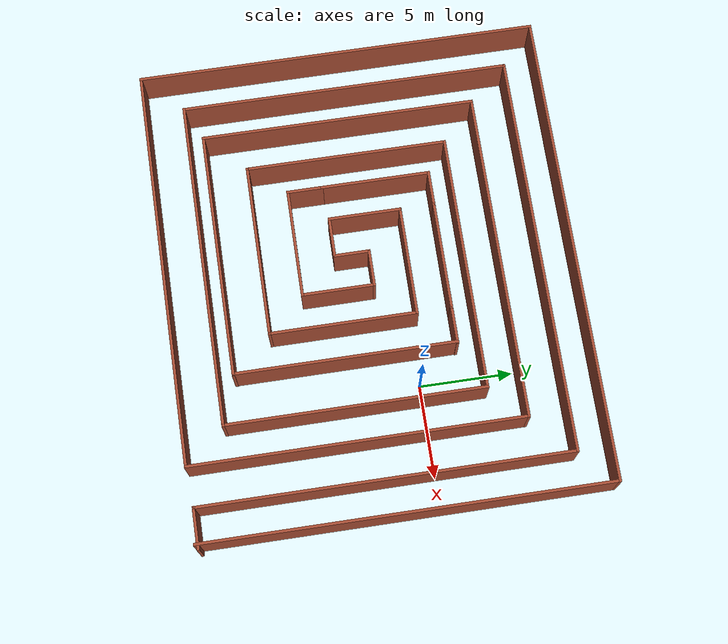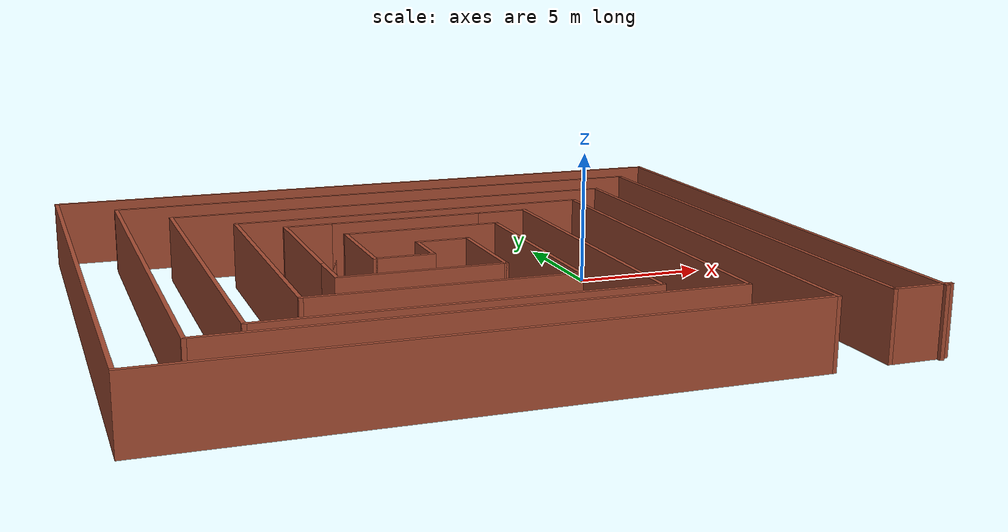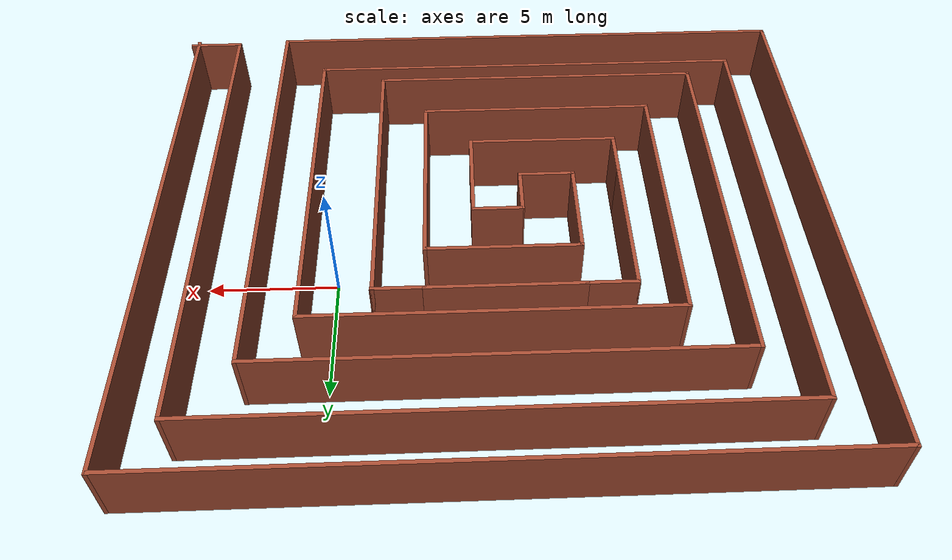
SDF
<?xml version='1.0'?>
<sdf version='1.6'>
  <model name='Laberinto'>
    <pose frame=''>-5.90005 -1.74204 0 0 -0 0</pose>
    <link name='Wall_11'>
      <collision name='Wall_11_Collision'>
        <geometry>
          <box>
            <size>2 0.15 2.5</size>
          </box>
        </geometry>
        <pose frame=''>0 0 1.25 0 -0 0</pose>
      </collision>
      <visual name='Wall_11_Visual'>
        <pose frame=''>0 0 1.25 0 -0 0</pose>
        <geometry>
          <box>
            <size>2 0.15 2.5</size>
          </box>
        </geometry>
        <material>
          <script>
            <uri>file://media/materials/scripts/gazebo.material</uri>
            <name>Gazebo/Bricks</name>
          </script>
          <ambient>1 1 1 1</ambient>
        </material>
      </visual>
      <pose frame=''>-4.32505 3.92486 0 0 -0 3.14159</pose>
    </link>
    <link name='Wall_14'>
      <collision name='Wall_14_Collision'>
        <geometry>
          <box>
            <size>6 0.15 2.5</size>
          </box>
        </geometry>
        <pose frame=''>0 0 1.25 0 -0 0</pose>
      </collision>
      <visual name='Wall_14_Visual'>
        <pose frame=''>0 0 1.25 0 -0 0</pose>
        <geometry>
          <box>
            <size>6 0.15 2.5</size>
          </box>
        </geometry>
        <material>
          <script>
            <uri>file://media/materials/scripts/gazebo.material</uri>
            <name>Gazebo/Bricks</name>
          </script>
          <ambient>1 1 1 1</ambient>
        </material>
      </visual>
      <pose frame=''>-5.25005 0.999863 0 0 0 -1.5708</pose>
    </link>
    <link name='Wall_23'>
      <collision name='Wall_23_Collision'>
        <geometry>
          <box>
            <size>2 0.15 2.5</size>
          </box>
        </geometry>
        <pose frame=''>0 0 1.25 0 -0 0</pose>
      </collision>
      <visual name='Wall_23_Visual'>
        <pose frame=''>0 0 1.25 0 -0 0</pose>
        <geometry>
          <box>
            <size>2 0.15 2.5</size>
          </box>
        </geometry>
        <material>
          <script>
            <uri>file://media/materials/scripts/gazebo.material</uri>
            <name>Gazebo/Bricks</name>
          </script>
          <ambient>1 1 1 1</ambient>
        </material>
      </visual>
      <pose frame=''>-5.25005 -2.85014 0 0 0 -1.5708</pose>
    </link>
    <link name='Wall_24'>
      <collision name='Wall_24_Collision'>
        <geometry>
          <box>
            <size>6 0.15 2.5</size>
          </box>
        </geometry>
        <pose frame=''>0 0 1.25 0 -0 0</pose>
      </collision>
      <visual name='Wall_24_Visual'>
        <pose frame=''>0 0 1.25 0 -0 0</pose>
        <geometry>
          <box>
            <size>6 0.15 2.5</size>
          </box>
        </geometry>
        <material>
          <script>
            <uri>file://media/materials/scripts/gazebo.material</uri>
            <name>Gazebo/Bricks</name>
          </script>
          <ambient>1 1 1 1</ambient>
        </material>
      </visual>
      <pose frame=''>-2.32505 -3.77514 0 0 -0 0</pose>
    </link>
    <link name='Wall_35'>
      <collision name='Wall_35_Collision'>
        <geometry>
          <box>
            <size>4 0.15 2.5</size>
          </box>
        </geometry>
        <pose frame=''>0 0 1.25 0 -0 0</pose>
      </collision>
      <visual name='Wall_35_Visual'>
        <pose frame=''>0 0 1.25 0 -0 0</pose>
        <geometry>
          <box>
            <size>4 0.15 2.5</size>
          </box>
        </geometry>
        <material>
          <script>
            <uri>file://media/materials/scripts/gazebo.material</uri>
            <name>Gazebo/Bricks</name>
          </script>
          <ambient>1 1 1 1</ambient>
        </material>
      </visual>
      <pose frame=''>0.599954 -1.85014 0 0 -0 1.5708</pose>
    </link>
    <link name='Wall_37'>
      <collision name='Wall_37_Collision'>
        <geometry>
          <box>
            <size>2 0.15 2.5</size>
          </box>
        </geometry>
        <pose frame=''>0 0 1.25 0 -0 0</pose>
      </collision>
      <visual name='Wall_37_Visual'>
        <pose frame=''>0 0 1.25 0 -0 0</pose>
        <geometry>
          <box>
            <size>2 0.15 2.5</size>
          </box>
        </geometry>
        <material>
          <script>
            <uri>file://media/materials/scripts/gazebo.material</uri>
            <name>Gazebo/Bricks</name>
          </script>
          <ambient>1 1 1 1</ambient>
        </material>
      </visual>
      <pose frame=''>-0.325046 0.074863 0 0 -0 3.14159</pose>
    </link>
    <link name='Wall_40'>
      <collision name='Wall_40_Collision'>
        <geometry>
          <box>
            <size>4 0.15 2.5</size>
          </box>
        </geometry>
        <pose frame=''>0 0 1.25 0 -0 0</pose>
      </collision>
      <visual name='Wall_40_Visual'>
        <pose frame=''>0 0 1.25 0 -0 0</pose>
        <geometry>
          <box>
            <size>4 0.15 2.5</size>
          </box>
        </geometry>
        <material>
          <script>
            <uri>file://media/materials/scripts/gazebo.material</uri>
            <name>Gazebo/Bricks</name>
          </script>
          <ambient>1 1 1 1</ambient>
        </material>
      </visual>
      <pose frame=''>-3.40005 0.149863 0 0 0 -1.5708</pose>
    </link>
    <link name='Wall_41'>
      <collision name='Wall_41_Collision'>
        <geometry>
          <box>
            <size>2.25 0.15 2.5</size>
          </box>
        </geometry>
        <pose frame=''>0 0 1.25 0 -0 0</pose>
      </collision>
      <visual name='Wall_41_Visual'>
        <pose frame=''>0 0 1.25 0 -0 0</pose>
        <geometry>
          <box>
            <size>2.25 0.15 2.5</size>
          </box>
        </geometry>
        <material>
          <script>
            <uri>file://media/materials/scripts/gazebo.material</uri>
            <name>Gazebo/Bricks</name>
          </script>
          <ambient>1 1 1 1</ambient>
        </material>
      </visual>
      <pose frame=''>-2.35005 -1.77514 0 0 -0 0</pose>
    </link>
    <link name='Wall_42'>
      <collision name='Wall_42_Collision'>
        <geometry>
          <box>
            <size>2 0.15 2.5</size>
          </box>
        </geometry>
        <pose frame=''>0 0 1.25 0 -0 0</pose>
      </collision>
      <visual name='Wall_42_Visual'>
        <pose frame=''>0 0 1.25 0 -0 0</pose>
        <geometry>
          <box>
            <size>2 0.15 2.5</size>
          </box>
        </geometry>
        <material>
          <script>
            <uri>file://media/materials/scripts/gazebo.material</uri>
            <name>Gazebo/Bricks</name>
          </script>
          <ambient>1 1 1 1</ambient>
        </material>
      </visual>
      <pose frame=''>-1.30005 -0.850137 0 0 -0 1.5708</pose>
    </link>
    <link name='Wall_47'>
      <collision name='Wall_47_Collision'>
        <geometry>
          <box>
            <size>2.0529 0.15 2.5</size>
          </box>
        </geometry>
        <pose frame=''>0 0 1.25 0 -0 0</pose>
      </collision>
      <visual name='Wall_47_Visual'>
        <pose frame=''>0 0 1.25 0 -0 0</pose>
        <geometry>
          <box>
            <size>2.0529 0.15 2.5</size>
          </box>
        </geometry>
        <material>
          <script>
            <uri>file://media/materials/scripts/gazebo.material</uri>
            <name>Gazebo/Bricks</name>
          </script>
          <ambient>1 1 1 1</ambient>
        </material>
      </visual>
      <pose frame=''>3.4014 3.92486 0 0 -0 0</pose>
    </link>
    <link name='Wall_51'>
      <collision name='Wall_51_Collision'>
        <geometry>
          <box>
            <size>8 0.15 2.5</size>
          </box>
        </geometry>
        <pose frame=''>0 0 1.25 0 -0 0</pose>
      </collision>
      <visual name='Wall_51_Visual'>
        <pose frame=''>0 0 1.25 0 -0 0</pose>
        <geometry>
          <box>
            <size>8 0.15 2.5</size>
          </box>
        </geometry>
        <material>
          <script>
            <uri>file://media/materials/scripts/gazebo.material</uri>
            <name>Gazebo/Bricks</name>
          </script>
          <ambient>1 1 1 1</ambient>
        </material>
      </visual>
      <pose frame=''>2.44995 -1.85014 0 0 0 -1.5708</pose>
    </link>
    <link name='Wall_53'>
      <collision name='Wall_53_Collision'>
        <geometry>
          <box>
            <size>9.5 0.15 2.5</size>
          </box>
        </geometry>
        <pose frame=''>0 0 1.25 0 -0 0</pose>
      </collision>
      <visual name='Wall_53_Visual'>
        <pose frame=''>0 0 1.25 0 -0 0</pose>
        <geometry>
          <box>
            <size>9.5 0.15 2.5</size>
          </box>
        </geometry>
        <material>
          <script>
            <uri>file://media/materials/scripts/gazebo.material</uri>
            <name>Gazebo/Bricks</name>
          </script>
          <ambient>1 1 1 1</ambient>
        </material>
      </visual>
      <pose frame=''>-2.22505 -5.77514 0 0 -0 3.14159</pose>
    </link>
    <link name='Wall_55'>
      <collision name='Wall_55_Collision'>
        <geometry>
          <box>
            <size>12 0.15 2.5</size>
          </box>
        </geometry>
        <pose frame=''>0 0 1.25 0 -0 0</pose>
      </collision>
      <visual name='Wall_55_Visual'>
        <pose frame=''>0 0 1.25 0 -0 0</pose>
        <geometry>
          <box>
            <size>12 0.15 2.5</size>
          </box>
        </geometry>
        <material>
          <script>
            <uri>file://media/materials/scripts/gazebo.material</uri>
            <name>Gazebo/Bricks</name>
          </script>
          <ambient>1 1 1 1</ambient>
        </material>
      </visual>
      <pose frame=''>4.3264 -2.00014 0 0 0 -1.5708</pose>
    </link>
    <link name='Wall_58'>
      <collision name='Wall_58_Collision'>
        <geometry>
          <box>
            <size>13.5529 0.15 2.5</size>
          </box>
        </geometry>
        <pose frame=''>0 0 1.25 0 -0 0</pose>
      </collision>
      <visual name='Wall_58_Visual'>
        <pose frame=''>0 0 1.25 0 -0 0</pose>
        <geometry>
          <box>
            <size>13.5529 0.15 2.5</size>
          </box>
        </geometry>
        <material>
          <script>
            <uri>file://media/materials/scripts/gazebo.material</uri>
            <name>Gazebo/Bricks</name>
          </script>
          <ambient>1 1 1 1</ambient>
        </material>
      </visual>
      <pose frame=''>-2.3486 -7.92514 0 0 -0 3.14159</pose>
    </link>
    <link name='Wall_6'>
      <collision name='Wall_6_Collision'>
        <geometry>
          <box>
            <size>6 0.15 2.5</size>
          </box>
        </geometry>
        <pose frame=''>0 0 1.25 0 -0 0</pose>
      </collision>
      <visual name='Wall_6_Visual'>
        <pose frame=''>0 0 1.25 0 -0 0</pose>
        <geometry>
          <box>
            <size>6 0.15 2.5</size>
          </box>
        </geometry>
        <material>
          <script>
            <uri>file://media/materials/scripts/gazebo.material</uri>
            <name>Gazebo/Bricks</name>
          </script>
          <ambient>1 1 1 1</ambient>
        </material>
      </visual>
      <pose frame=''>-0.475046 3.92486 0 0 -0 0</pose>
    </link>
    <link name='Wall_61'>
      <collision name='Wall_61_Collision'>
        <geometry>
          <box>
            <size>11 0.15 2.5</size>
          </box>
        </geometry>
        <pose frame=''>0 0 1.25 0 -0 0</pose>
      </collision>
      <visual name='Wall_61_Visual'>
        <pose frame=''>0 0 1.25 0 -0 0</pose>
        <geometry>
          <box>
            <size>11 0.15 2.5</size>
          </box>
        </geometry>
        <material>
          <script>
            <uri>file://media/materials/scripts/gazebo.material</uri>
            <name>Gazebo/Bricks</name>
          </script>
          <ambient>1 1 1 1</ambient>
        </material>
      </visual>
      <pose frame=''>-6.90005 -0.350137 0 0 -0 1.5708</pose>
    </link>
    <link name='Wall_63'>
      <collision name='Wall_63_Collision'>
        <geometry>
          <box>
            <size>15 0.15 2.5</size>
          </box>
        </geometry>
        <pose frame=''>0 0 1.25 0 -0 0</pose>
      </collision>
      <visual name='Wall_63_Visual'>
        <pose frame=''>0 0 1.25 0 -0 0</pose>
        <geometry>
          <box>
            <size>15 0.15 2.5</size>
          </box>
        </geometry>
        <material>
          <script>
            <uri>file://media/materials/scripts/gazebo.material</uri>
            <name>Gazebo/Bricks</name>
          </script>
          <ambient>1 1 1 1</ambient>
        </material>
      </visual>
      <pose frame=''>-9.05005 -0.500137 0 0 -0 1.5708</pose>
    </link>
    <link name='Wall_67'>
      <collision name='Wall_67_Collision'>
        <geometry>
          <box>
            <size>18 0.15 2.5</size>
          </box>
        </geometry>
        <pose frame=''>0 0 1.25 0 -0 0</pose>
      </collision>
      <visual name='Wall_67_Visual'>
        <pose frame=''>0 0 1.25 0 -0 0</pose>
        <geometry>
          <box>
            <size>18 0.15 2.5</size>
          </box>
        </geometry>
        <material>
          <script>
            <uri>file://media/materials/scripts/gazebo.material</uri>
            <name>Gazebo/Bricks</name>
          </script>
          <ambient>1 1 1 1</ambient>
        </material>
      </visual>
      <pose frame=''>-0.125046 6.92486 0 0 -0 0</pose>
    </link>
    <link name='Wall_73'>
      <collision name='Wall_73_Collision'>
        <geometry>
          <box>
            <size>14 0.15 2.5</size>
          </box>
        </geometry>
        <pose frame=''>0 0 1.25 0 -0 0</pose>
      </collision>
      <visual name='Wall_73_Visual'>
        <pose frame=''>0 0 1.25 0 -0 0</pose>
        <geometry>
          <box>
            <size>14 0.15 2.5</size>
          </box>
        </geometry>
        <material>
          <script>
            <uri>file://media/materials/scripts/gazebo.material</uri>
            <name>Gazebo/Bricks</name>
          </script>
          <ambient>1 1 1 1</ambient>
        </material>
      </visual>
      <pose frame=''>0.024954 5.07486 0 0 -0 0</pose>
    </link>
    <link name='Wall_75'>
      <collision name='Wall_75_Collision'>
        <geometry>
          <box>
            <size>14 0.15 2.5</size>
          </box>
        </geometry>
        <pose frame=''>0 0 1.25 0 -0 0</pose>
      </collision>
      <visual name='Wall_75_Visual'>
        <pose frame=''>0 0 1.25 0 -0 0</pose>
        <geometry>
          <box>
            <size>14 0.15 2.5</size>
          </box>
        </geometry>
        <material>
          <script>
            <uri>file://media/materials/scripts/gazebo.material</uri>
            <name>Gazebo/Bricks</name>
          </script>
          <ambient>1 1 1 1</ambient>
        </material>
      </visual>
      <pose frame=''>6.94995 -1.85014 0 0 0 -1.5708</pose>
    </link>
    <link name='Wall_77'>
      <collision name='Wall_77_Collision'>
        <geometry>
          <box>
            <size>18 0.15 2.5</size>
          </box>
        </geometry>
        <pose frame=''>0 0 1.25 0 -0 0</pose>
      </collision>
      <visual name='Wall_77_Visual'>
        <pose frame=''>0 0 1.25 0 -0 0</pose>
        <geometry>
          <box>
            <size>18 0.15 2.5</size>
          </box>
        </geometry>
        <material>
          <script>
            <uri>file://media/materials/scripts/gazebo.material</uri>
            <name>Gazebo/Bricks</name>
          </script>
          <ambient>1 1 1 1</ambient>
        </material>
      </visual>
      <pose frame=''>8.8 -2.00005 0 0 0 -1.57079</pose>
    </link>
    <link name='Wall_79'>
      <collision name='Wall_79_Collision'>
        <geometry>
          <box>
            <size>18 0.15 2.5</size>
          </box>
        </geometry>
        <pose frame=''>0 0 1.25 0 -0 0</pose>
      </collision>
      <visual name='Wall_79_Visual'>
        <pose frame=''>0 0 1.25 0 -0 0</pose>
        <geometry>
          <box>
            <size>18 0.15 2.5</size>
          </box>
        </geometry>
        <material>
          <script>
            <uri>file://media/materials/scripts/gazebo.material</uri>
            <name>Gazebo/Bricks</name>
          </script>
          <ambient>1 1 1 1</ambient>
        </material>
      </visual>
      <pose frame=''>-1.97505 -8.77514 0 0 -0 3.14159</pose>
    </link>
    <link name='Wall_81'>
      <collision name='Wall_81_Collision'>
        <geometry>
          <box>
            <size>22 0.15 2.5</size>
          </box>
        </geometry>
        <pose frame=''>0 0 1.25 0 -0 0</pose>
      </collision>
      <visual name='Wall_81_Visual'>
        <pose frame=''>0 0 1.25 0 -0 0</pose>
        <geometry>
          <box>
            <size>22 0.15 2.5</size>
          </box>
        </geometry>
        <material>
          <script>
            <uri>file://media/materials/scripts/gazebo.material</uri>
            <name>Gazebo/Bricks</name>
          </script>
          <ambient>1 1 1 1</ambient>
        </material>
      </visual>
      <pose frame=''>-2.12495 -10.925 0 0 -0 3.14159</pose>
    </link>
    <link name='Wall_83'>
      <collision name='Wall_83_Collision'>
        <geometry>
          <box>
            <size>18 0.15 2.5</size>
          </box>
        </geometry>
        <pose frame=''>0 0 1.25 0 -0 0</pose>
      </collision>
      <visual name='Wall_83_Visual'>
        <pose frame=''>0 0 1.25 0 -0 0</pose>
        <geometry>
          <box>
            <size>18 0.15 2.5</size>
          </box>
        </geometry>
        <material>
          <script>
            <uri>file://media/materials/scripts/gazebo.material</uri>
            <name>Gazebo/Bricks</name>
          </script>
          <ambient>1 1 1 1</ambient>
        </material>
      </visual>
      <pose frame=''>-10.9 0.149863 0 0 -0 1.5708</pose>
    </link>
    <link name='Wall_85'>
      <collision name='Wall_85_Collision'>
        <geometry>
          <box>
            <size>22 0.15 2.5</size>
          </box>
        </geometry>
        <pose frame=''>0 0 1.25 0 -0 0</pose>
      </collision>
      <visual name='Wall_85_Visual'>
        <pose frame=''>0 0 1.25 0 -0 0</pose>
        <geometry>
          <box>
            <size>22 0.15 2.5</size>
          </box>
        </geometry>
        <material>
          <script>
            <uri>file://media/materials/scripts/gazebo.material</uri>
            <name>Gazebo/Bricks</name>
          </script>
          <ambient>1 1 1 1</ambient>
        </material>
      </visual>
      <pose frame=''>-13.05 4.4e-05 0 0 -0 1.5708</pose>
    </link>
    <link name='Wall_87'>
      <collision name='Wall_87_Collision'>
        <geometry>
          <box>
            <size>22 0.15 2.5</size>
          </box>
        </geometry>
        <pose frame=''>0 0 1.25 0 -0 0</pose>
      </collision>
      <visual name='Wall_87_Visual'>
        <pose frame=''>0 0 1.25 0 -0 0</pose>
        <geometry>
          <box>
            <size>22 0.15 2.5</size>
          </box>
        </geometry>
        <material>
          <script>
            <uri>file://media/materials/scripts/gazebo.material</uri>
            <name>Gazebo/Bricks</name>
          </script>
          <ambient>1 1 1 1</ambient>
        </material>
      </visual>
      <pose frame=''>0.024954 9.07486 0 0 -0 0</pose>
    </link>
    <link name='Wall_89'>
      <collision name='Wall_89_Collision'>
        <geometry>
          <box>
            <size>26 0.15 2.5</size>
          </box>
        </geometry>
        <pose frame=''>0 0 1.25 0 -0 0</pose>
      </collision>
      <visual name='Wall_89_Visual'>
        <pose frame=''>0 0 1.25 0 -0 0</pose>
        <geometry>
          <box>
            <size>26 0.15 2.5</size>
          </box>
        </geometry>
        <material>
          <script>
            <uri>file://media/materials/scripts/gazebo.material</uri>
            <name>Gazebo/Bricks</name>
          </script>
          <ambient>1 1 1 1</ambient>
        </material>
      </visual>
      <pose frame=''>-0.124953 10.925 0 0 -0 0</pose>
    </link>
    <link name='Wall_9'>
      <collision name='Wall_9_Collision'>
        <geometry>
          <box>
            <size>6 0.15 2.5</size>
          </box>
        </geometry>
        <pose frame=''>0 0 1.25 0 -0 0</pose>
      </collision>
      <visual name='Wall_9_Visual'>
        <pose frame=''>0 0 1.25 0 -0 0</pose>
        <geometry>
          <box>
            <size>6 0.15 2.5</size>
          </box>
        </geometry>
        <material>
          <script>
            <uri>file://media/materials/scripts/gazebo.material</uri>
            <name>Gazebo/Bricks</name>
          </script>
          <ambient>1 1 1 1</ambient>
        </material>
      </visual>
      <pose frame=''>-0.475046 2.07486 0 0 -0 3.14159</pose>
    </link>
    <link name='Wall_91'>
      <collision name='Wall_91_Collision'>
        <geometry>
          <box>
            <size>20 0.15 2.5</size>
          </box>
        </geometry>
        <pose frame=''>0 0 1.25 0 -0 0</pose>
      </collision>
      <visual name='Wall_91_Visual'>
        <pose frame=''>0 0 1.25 0 -0 0</pose>
        <geometry>
          <box>
            <size>20 0.15 2.5</size>
          </box>
        </geometry>
        <material>
          <script>
            <uri>file://media/materials/scripts/gazebo.material</uri>
            <name>Gazebo/Bricks</name>
          </script>
          <ambient>1 1 1 1</ambient>
        </material>
      </visual>
      <pose frame=''>10.95 -0.850137 0 0 0 -1.5708</pose>
    </link>
    <link name='Wall_93'>
      <collision name='Wall_93_Collision'>
        <geometry>
          <box>
            <size>22 0.15 2.5</size>
          </box>
        </geometry>
        <pose frame=''>0 0 1.25 0 -0 0</pose>
      </collision>
      <visual name='Wall_93_Visual'>
        <pose frame=''>0 0 1.25 0 -0 0</pose>
        <geometry>
          <box>
            <size>22 0.15 2.5</size>
          </box>
        </geometry>
        <material>
          <script>
            <uri>file://media/materials/scripts/gazebo.material</uri>
            <name>Gazebo/Bricks</name>
          </script>
          <ambient>1 1 1 1</ambient>
        </material>
      </visual>
      <pose frame=''>12.8 4.4e-05 0 0 0 -1.5708</pose>
    </link>
    <link name='Wall_97'>
      <collision name='Wall_97_Collision'>
        <geometry>
          <box>
            <size>2.25 0.15 2.5</size>
          </box>
        </geometry>
        <pose frame=''>0 0 1.25 0 -0 0</pose>
      </collision>
      <visual name='Wall_97_Visual'>
        <pose frame=''>0 0 1.25 0 -0 0</pose>
        <geometry>
          <box>
            <size>2.25 0.15 2.5</size>
          </box>
        </geometry>
        <material>
          <script>
            <uri>file://media/materials/scripts/gazebo.material</uri>
            <name>Gazebo/Bricks</name>
          </script>
          <ambient>1 1 1 1</ambient>
        </material>
      </visual>
      <pose frame=''>12 -10.7751 0 0 -0 0</pose>
    </link>
    <static>1</static>
  </model>
</sdf>
